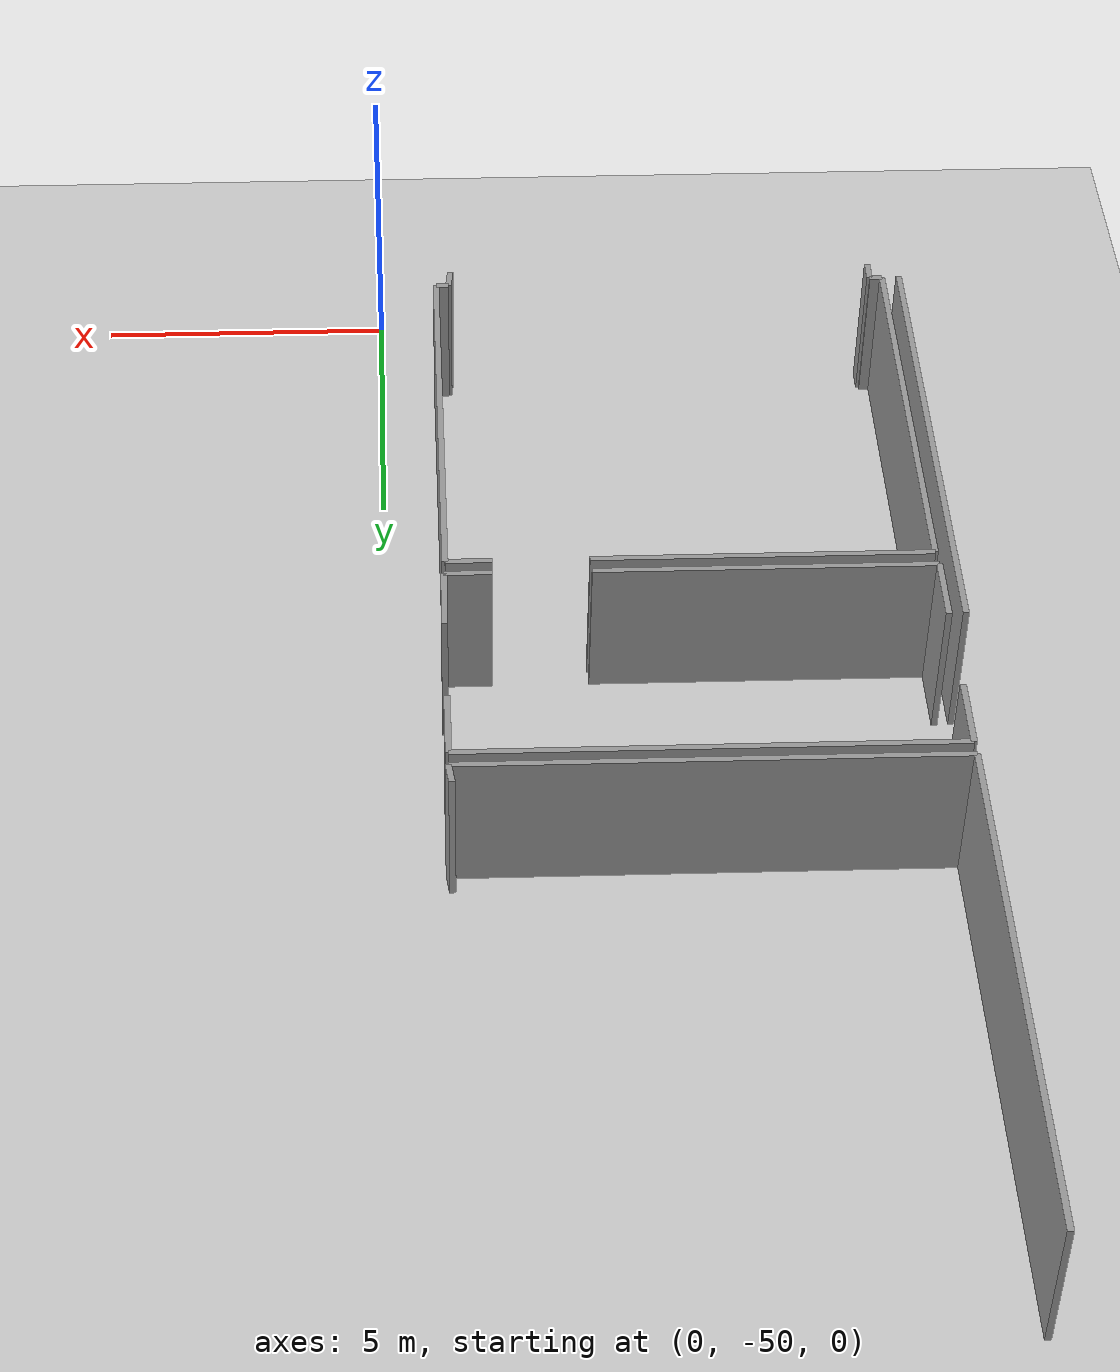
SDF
<sdf version="1.6">
 <world name="default">
  <model name="ground_plane">
   <static>1</static>
   <link name="link">
    <collision name="collision">
     <geometry><plane><normal>0 0 1</normal><size>100 100</size></plane></geometry>
     <surface><friction><ode><mu>100</mu><mu2>50</mu2></ode></friction></surface>
    </collision>
    <visual name="visual">
     <cast_shadows>0</cast_shadows>
     <geometry><plane><normal>0 0 1</normal><size>100 100</size></plane></geometry>
     <material>
      <script><uri>file://media/materials/scripts/gazebo.material</uri><name>Gazebo/Grey</name></script>
     </material>
    </visual>
   </link>
  </model>
  <model name="50025632">
   <static>1</static>
   <link name="Wall_434">
    <collision name="Wall_434_Collision">
     <geometry><box><size>7.96408136308 0.1 2.5</size></box></geometry>
     <pose>3.98204068154 0 1.25 0 0 0</pose>
    </collision>
    <visual name="Wall_434_Visual">
     <pose>3.98204068154 0 1.25 0 0 0</pose>
     <geometry><box><size>7.96408136308 0.1 2.5</size></box></geometry>
     <material>
      <script><uri>file://media/materials/scripts/gazebo.material</uri><name>Gazebo/Grey</name></script>
      <ambient>1 1 1 1</ambient>
     </material>
    </visual>
    <pose>49.2109457855 -84.8497653477 0 0 0 3.14159265359</pose>
   </link>
   <link name="Wall_435">
    <collision name="Wall_435_Collision">
     <geometry><box><size>8.71344472175 0.1 2.5</size></box></geometry>
     <pose>4.35672236088 0 1.25 0 0 0</pose>
    </collision>
    <visual name="Wall_435_Visual">
     <pose>4.35672236088 0 1.25 0 0 0</pose>
     <geometry><box><size>8.71344472175 0.1 2.5</size></box></geometry>
     <material>
      <script><uri>file://media/materials/scripts/gazebo.material</uri><name>Gazebo/Grey</name></script>
      <ambient>1 1 1 1</ambient>
     </material>
    </visual>
    <pose>41.2468644224 -84.8497653477 0 0 0 1.57079632679</pose>
   </link>
   <link name="Wall_441">
    <collision name="Wall_441_Collision">
     <geometry><box><size>0.352329368933 0.1 2.5</size></box></geometry>
     <pose>0.176164684466 0 1.25 0 0 0</pose>
    </collision>
    <visual name="Wall_441_Visual">
     <pose>0.176164684466 0 1.25 0 0 0</pose>
     <geometry><box><size>0.352329368933 0.1 2.5</size></box></geometry>
     <material>
      <script><uri>file://media/materials/scripts/gazebo.material</uri><name>Gazebo/Grey</name></script>
      <ambient>1 1 1 1</ambient>
     </material>
    </visual>
    <pose>49.1628087155 -84.5007398376 0 0 0 -1.43374246654</pose>
   </link>
   <link name="Wall_442">
    <collision name="Wall_442_Collision">
     <geometry><box><size>0.777686753415 0.1 2.5</size></box></geometry>
     <pose>0.388843376707 0 1.25 0 0 0</pose>
    </collision>
    <visual name="Wall_442_Visual">
     <pose>0.388843376707 0 1.25 0 0 0</pose>
     <geometry><box><size>0.777686753415 0.1 2.5</size></box></geometry>
     <material>
      <script><uri>file://media/materials/scripts/gazebo.material</uri><name>Gazebo/Grey</name></script>
      <ambient>1 1 1 1</ambient>
     </material>
    </visual>
    <pose>49.1846545625 -89.076936755 0 0 0 3.14159265359</pose>
   </link>
   <link name="Wall_443">
    <collision name="Wall_443_Collision">
     <geometry><box><size>5.56065715356 0.1 2.5</size></box></geometry>
     <pose>2.78032857678 0 1.25 0 0 0</pose>
    </collision>
    <visual name="Wall_443_Visual">
     <pose>2.78032857678 0 1.25 0 0 0</pose>
     <geometry><box><size>5.56065715356 0.1 2.5</size></box></geometry>
     <material>
      <script><uri>file://media/materials/scripts/gazebo.material</uri><name>Gazebo/Grey</name></script>
      <ambient>1 1 1 1</ambient>
     </material>
    </visual>
    <pose>46.8175554243 -89.076936755 0 0 0 3.14159265359</pose>
   </link>
   <link name="Wall_444">
    <collision name="Wall_444_Collision">
     <geometry><box><size>1.16341836702 0.1 2.5</size></box></geometry>
     <pose>0.581709183511 0 1.25 0 0 0</pose>
    </collision>
    <visual name="Wall_444_Visual">
     <pose>0.581709183511 0 1.25 0 0 0</pose>
     <geometry><box><size>1.16341836702 0.1 2.5</size></box></geometry>
     <material>
      <script><uri>file://media/materials/scripts/gazebo.material</uri><name>Gazebo/Grey</name></script>
      <ambient>1 1 1 1</ambient>
     </material>
    </visual>
    <pose>41.2568982707 -89.076936755 0 0 0 1.57079632679</pose>
   </link>
   <link name="Wall_445">
    <collision name="Wall_445_Collision">
     <geometry><box><size>1.21003130815 0.1 2.5</size></box></geometry>
     <pose>0.605015654074 0 1.25 0 0 0</pose>
    </collision>
    <visual name="Wall_445_Visual">
     <pose>0.605015654074 0 1.25 0 0 0</pose>
     <geometry><box><size>1.21003130815 0.1 2.5</size></box></geometry>
     <material>
      <script><uri>file://media/materials/scripts/gazebo.material</uri><name>Gazebo/Grey</name></script>
      <ambient>1 1 1 1</ambient>
     </material>
    </visual>
    <pose>41.2568982707 -86.3192795951 0 0 0 1.57079632679</pose>
   </link>
   <link name="Wall_446">
    <collision name="Wall_446_Collision">
     <geometry><box><size>7.94236252675 0.1 2.5</size></box></geometry>
     <pose>3.97118126338 0 1.25 0 0 0</pose>
    </collision>
    <visual name="Wall_446_Visual">
     <pose>3.97118126338 0 1.25 0 0 0</pose>
     <geometry><box><size>7.94236252675 0.1 2.5</size></box></geometry>
     <material>
      <script><uri>file://media/materials/scripts/gazebo.material</uri><name>Gazebo/Grey</name></script>
      <ambient>1 1 1 1</ambient>
     </material>
    </visual>
    <pose>41.2568982707 -85.1092482869 0 0 0 0.0</pose>
   </link>
   <link name="Wall_447">
    <collision name="Wall_447_Collision">
     <geometry><box><size>1.20088653496 0.1 2.5</size></box></geometry>
     <pose>0.600443267478 0 1.25 0 0 0</pose>
    </collision>
    <visual name="Wall_447_Visual">
     <pose>0.600443267478 0 1.25 0 0 0</pose>
     <geometry><box><size>1.20088653496 0.1 2.5</size></box></geometry>
     <material>
      <script><uri>file://media/materials/scripts/gazebo.material</uri><name>Gazebo/Grey</name></script>
      <ambient>1 1 1 1</ambient>
     </material>
    </visual>
    <pose>49.1992607975 -85.1092482869 0 0 0 -1.57079632679</pose>
   </link>
   <link name="Wall_448">
    <collision name="Wall_448_Collision">
     <geometry><box><size>1.15246099583 0.1 2.5</size></box></geometry>
     <pose>0.576230497913 0 1.25 0 0 0</pose>
    </collision>
    <visual name="Wall_448_Visual">
     <pose>0.576230497913 0 1.25 0 0 0</pose>
     <geometry><box><size>1.15246099583 0.1 2.5</size></box></geometry>
     <material>
      <script><uri>file://media/materials/scripts/gazebo.material</uri><name>Gazebo/Grey</name></script>
      <ambient>1 1 1 1</ambient>
     </material>
    </visual>
    <pose>49.1992607975 -87.9245683223 0 0 0 -1.58347061779</pose>
   </link>
   <link name="Wall_449">
    <collision name="Wall_449_Collision">
     <geometry><box><size>0.375697765246 0.1 2.5</size></box></geometry>
     <pose>0.187848882623 0 1.25 0 0 0</pose>
    </collision>
    <visual name="Wall_449_Visual">
     <pose>0.187848882623 0 1.25 0 0 0</pose>
     <geometry><box><size>0.375697765246 0.1 2.5</size></box></geometry>
     <material>
      <script><uri>file://media/materials/scripts/gazebo.material</uri><name>Gazebo/Grey</name></script>
      <ambient>1 1 1 1</ambient>
     </material>
    </visual>
    <pose>41.5041881791 -96.9306457861 0 0 0 1.57079632679</pose>
   </link>
   <link name="Wall_450">
    <collision name="Wall_450_Collision">
     <geometry><box><size>0.217188363276 0.1 2.5</size></box></geometry>
     <pose>0.108594181638 0 1.25 0 0 0</pose>
    </collision>
    <visual name="Wall_450_Visual">
     <pose>0.108594181638 0 1.25 0 0 0</pose>
     <geometry><box><size>0.217188363276 0.1 2.5</size></box></geometry>
     <material>
      <script><uri>file://media/materials/scripts/gazebo.material</uri><name>Gazebo/Grey</name></script>
      <ambient>1 1 1 1</ambient>
     </material>
    </visual>
    <pose>41.5041881791 -96.5549480209 0 0 0 3.14159265359</pose>
   </link>
   <link name="Wall_451">
    <collision name="Wall_451_Collision">
     <geometry><box><size>7.19465030768 0.1 2.5</size></box></geometry>
     <pose>3.59732515384 0 1.25 0 0 0</pose>
    </collision>
    <visual name="Wall_451_Visual">
     <pose>3.59732515384 0 1.25 0 0 0</pose>
     <geometry><box><size>7.19465030768 0.1 2.5</size></box></geometry>
     <material>
      <script><uri>file://media/materials/scripts/gazebo.material</uri><name>Gazebo/Grey</name></script>
      <ambient>1 1 1 1</ambient>
     </material>
    </visual>
    <pose>41.2869998158 -96.5549480209 0 0 0 1.57079632679</pose>
   </link>
   <link name="Wall_452">
    <collision name="Wall_452_Collision">
     <geometry><box><size>5.55202042333 0.1 2.5</size></box></geometry>
     <pose>2.77601021166 0 1.25 0 0 0</pose>
    </collision>
    <visual name="Wall_452_Visual">
     <pose>2.77601021166 0 1.25 0 0 0</pose>
     <geometry><box><size>5.55202042333 0.1 2.5</size></box></geometry>
     <material>
      <script><uri>file://media/materials/scripts/gazebo.material</uri><name>Gazebo/Grey</name></script>
      <ambient>1 1 1 1</ambient>
     </material>
    </visual>
    <pose>41.2869998158 -89.3602977132 0 0 0 0.0</pose>
   </link>
   <link name="Wall_453">
    <collision name="Wall_453_Collision">
     <geometry><box><size>0.765239701017 0.1 2.5</size></box></geometry>
     <pose>0.382619850508 0 1.25 0 0 0</pose>
    </collision>
    <visual name="Wall_453_Visual">
     <pose>0.382619850508 0 1.25 0 0 0</pose>
     <geometry><box><size>0.765239701017 0.1 2.5</size></box></geometry>
     <material>
      <script><uri>file://media/materials/scripts/gazebo.material</uri><name>Gazebo/Grey</name></script>
      <ambient>1 1 1 1</ambient>
     </material>
    </visual>
    <pose>48.3969339608 -89.3602977132 0 0 0 0.0</pose>
   </link>
   <link name="Wall_454">
    <collision name="Wall_454_Collision">
     <geometry><box><size>7.19465030768 0.1 2.5</size></box></geometry>
     <pose>3.59732515384 0 1.25 0 0 0</pose>
    </collision>
    <visual name="Wall_454_Visual">
     <pose>3.59732515384 0 1.25 0 0 0</pose>
     <geometry><box><size>7.19465030768 0.1 2.5</size></box></geometry>
     <material>
      <script><uri>file://media/materials/scripts/gazebo.material</uri><name>Gazebo/Grey</name></script>
      <ambient>1 1 1 1</ambient>
     </material>
    </visual>
    <pose>49.1621736618 -89.3602977132 0 0 0 -1.57079632679</pose>
   </link>
   <link name="Wall_455">
    <collision name="Wall_455_Collision">
     <geometry><box><size>0.217188363276 0.1 2.5</size></box></geometry>
     <pose>0.108594181638 0 1.25 0 0 0</pose>
    </collision>
    <visual name="Wall_455_Visual">
     <pose>0.108594181638 0 1.25 0 0 0</pose>
     <geometry><box><size>0.217188363276 0.1 2.5</size></box></geometry>
     <material>
      <script><uri>file://media/materials/scripts/gazebo.material</uri><name>Gazebo/Grey</name></script>
      <ambient>1 1 1 1</ambient>
     </material>
    </visual>
    <pose>49.1621736618 -96.5549480209 0 0 0 3.14159265359</pose>
   </link>
   <link name="Wall_456">
    <collision name="Wall_456_Collision">
     <geometry><box><size>0.378014450987 0.1 2.5</size></box></geometry>
     <pose>0.189007225494 0 1.25 0 0 0</pose>
    </collision>
    <visual name="Wall_456_Visual">
     <pose>0.189007225494 0 1.25 0 0 0</pose>
     <geometry><box><size>0.378014450987 0.1 2.5</size></box></geometry>
     <material>
      <script><uri>file://media/materials/scripts/gazebo.material</uri><name>Gazebo/Grey</name></script>
      <ambient>1 1 1 1</ambient>
     </material>
    </visual>
    <pose>48.9449852985 -96.5549480209 0 0 0 -1.68156486109</pose>
   </link>
   <link name="Wall_516">
    <collision name="Wall_516_Collision">
     <geometry><box><size>8.6529876101 0.1 2.5</size></box></geometry>
     <pose>4.32649380505 0 1.25 0 0 0</pose>
    </collision>
    <visual name="Wall_516_Visual">
     <pose>4.32649380505 0 1.25 0 0 0</pose>
     <geometry><box><size>8.6529876101 0.1 2.5</size></box></geometry>
     <material>
      <script><uri>file://media/materials/scripts/gazebo.material</uri><name>Gazebo/Grey</name></script>
      <ambient>1 1 1 1</ambient>
     </material>
    </visual>
    <pose>40.985984365 -87.9231712041 0 0 0 -1.57079632679</pose>
   </link>
   <pose>-50.15 48.4557939124 0 0 0 0</pose>
  </model>
 </world>
</sdf>
